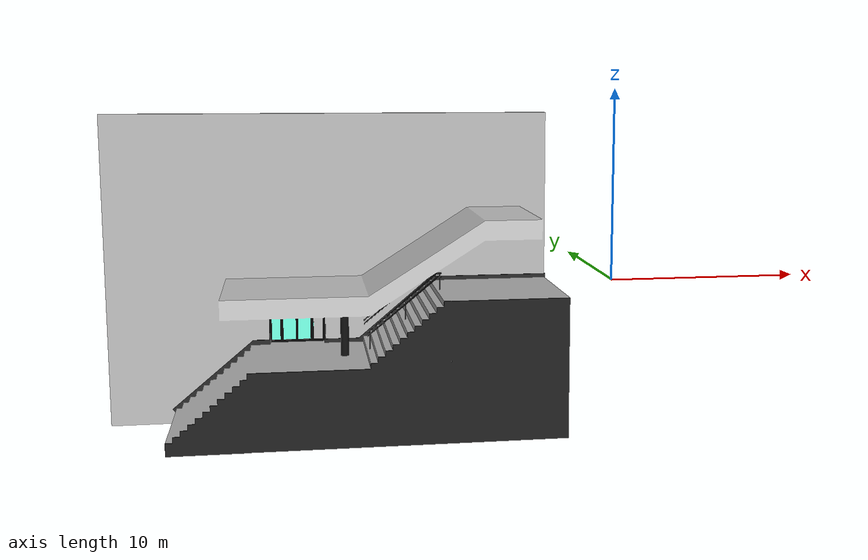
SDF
<?xml version="1.0" encoding="utf-8"?>
<sdf version='1.9'>
  <model name="cantabria_demo">
    <pose>0 0 0 0 0 0</pose>

    <static>true</static>

    <link name="link">

      <!-- Visual mesh -->
      <visual name="visual">
        <geometry>
          <mesh>
            <uri>model://cantabria_demo/meshes/cantabria_demo.dae</uri>
            <scale>1 1 1</scale>
          </mesh>
        </geometry>
      </visual>

      <!-- Collision mesh -->
      <collision name="collision">
        <geometry>
          <mesh>
            <uri>model://cantabria_demo/meshes/cantabria_demo.dae</uri>
            <scale>1 1 1</scale>
          </mesh>
        </geometry>
      </collision>

    </link>
  </model>
</sdf>
